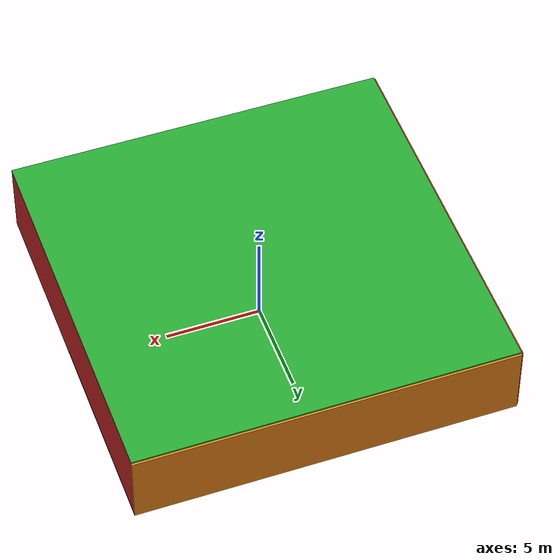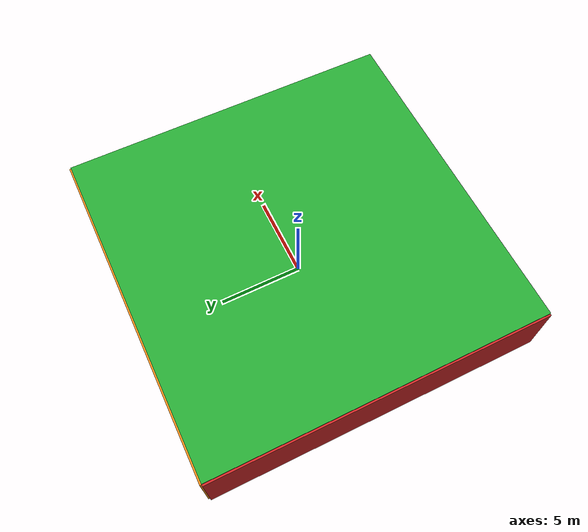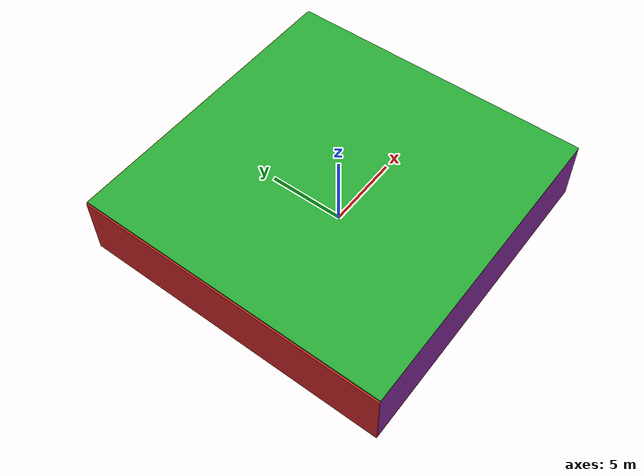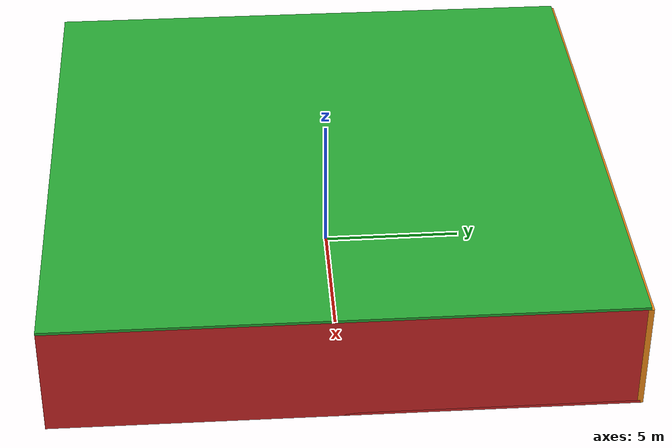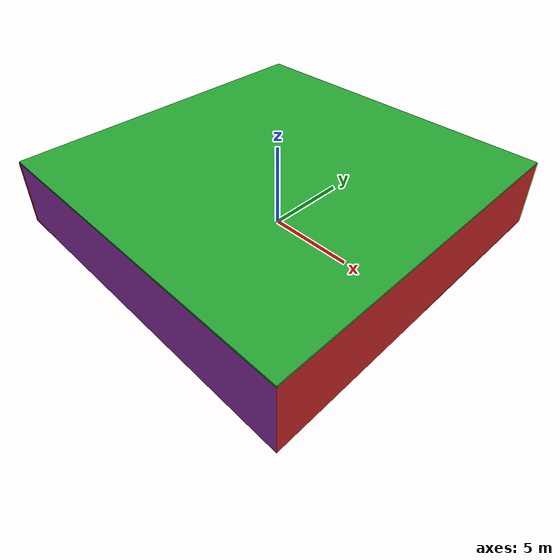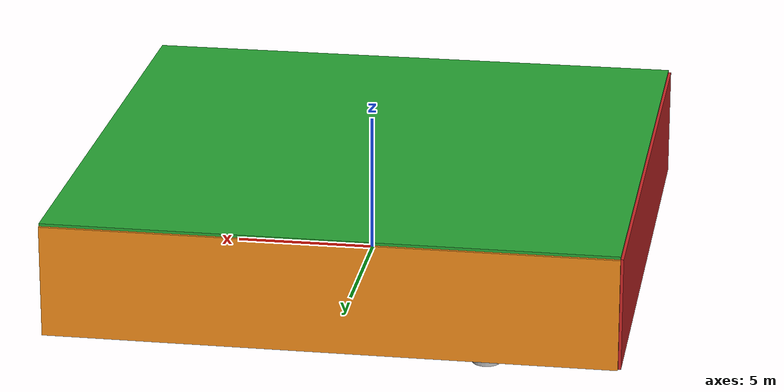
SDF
<sdf version="1.4">
 <world name="default">
  <physics type="ode">
   <max_step_size>0.001</max_step_size>
   <real_time_factor>1</real_time_factor>
   <real_time_update_rate>1000</real_time_update_rate>
   <gravity>0 0 -9.8</gravity>
  </physics>
  <scene><ambient>0.4 0.4 0.4 1</ambient><background>0.7 0.7 0.7 1</background><shadows>1</shadows></scene>
  <model name="Surrounding">
   <static>1</static>
   <link name="Ceiling">
    <collision name="Ceiling_Collision"><geometry><box><size>20 20 0.1</size></box></geometry></collision>
    <visual name="Ceiling_Visual">
     <geometry><box><size>20 20 0.1</size></box></geometry>
     <material>
      <script><uri>file://media/materials/scripts/gazebo.material</uri><name>Gazebo/Green</name></script>
     </material>
    </visual>
    <pose>0 0 4.05 0 0 0</pose>
   </link>
   <link name="Wall_South">
    <collision name="Wall_South_Collision">
     <geometry><box><size>20 0 4</size></box></geometry>
     <pose>0 0 2 0 -0 0</pose>
    </collision>
    <visual name="Wall_South_Visual">
     <pose>0 0 2 0 -0 0</pose>
     <geometry><box><size>20 0 4</size></box></geometry>
     <material>
      <script><uri>file://media/materials/scripts/gazebo.material</uri><name>Gazebo/Purple</name></script>
     </material>
    </visual>
    <velocity_decay><linear>0</linear><angular>0</angular></velocity_decay>
    <pose>0 -10 0 0 -0 0</pose>
   </link>
   <link name="Wall_East">
    <collision name="Wall_21_Collision">
     <geometry><box><size>20 0 4</size></box></geometry>
     <pose>0 0 2 0 -0 0</pose>
    </collision>
    <visual name="Wall_21_Visual">
     <pose>0 0 2 0 -0 0</pose>
     <geometry><box><size>20 0 4</size></box></geometry>
     <material>
      <script><uri>file://media/materials/scripts/gazebo.material</uri><name>Gazebo/RedGlow</name></script>
     </material>
    </visual>
    <velocity_decay><linear>0</linear><angular>0</angular></velocity_decay>
    <pose>10 0 0 0 -0 1.5708</pose>
   </link>
   <link name="Wall_North">
    <collision name="Wall_22_Collision">
     <geometry><box><size>20 0.2 4</size></box></geometry>
     <pose>0 0 2 0 -0 0</pose>
    </collision>
    <visual name="Wall_22_Visual">
     <pose>0 0 2 0 -0 0</pose>
     <geometry><box><size>20 0.2 4</size></box></geometry>
     <material>
      <script><uri>file://media/materials/scripts/gazebo.material</uri><name>Gazebo/Orange</name></script>
     </material>
    </visual>
    <velocity_decay><linear>0</linear><angular>0</angular></velocity_decay>
    <pose>0 10 0 0 -0 0</pose>
   </link>
   <link name="Wall_West">
    <collision name="Wall_23_Collision">
     <geometry><box><size>20 0.2 4</size></box></geometry>
     <pose>0 0 2 0 -0 0</pose>
    </collision>
    <visual name="Wall_23_Visual">
     <pose>0 0 2 0 -0 0</pose>
     <geometry><box><size>20 0.2 4</size></box></geometry>
     <material>
      <script><uri>file://media/materials/scripts/gazebo.material</uri><name>Gazebo/Red</name></script>
     </material>
    </visual>
    <velocity_decay><linear>0</linear><angular>0</angular></velocity_decay>
    <pose>-10 0 0 0 0 -1.5708</pose>
   </link>
   <link name="Ground_link">
    <collision name="collision">
     <pose>0 0 .05 0 -0 0</pose>
     <geometry><box><size>20 20 0.1</size></box></geometry>
    </collision>
    <visual name="visual">
     <pose>0 0 .05 0 -0 0</pose>
     <geometry><box><size>20 20 0.1</size></box></geometry>
     <material>
      <script><uri>file://media/materials/scripts/gazebo.material</uri><name>Gazebo/Red</name></script>
     </material>
    </visual>
   </link>
   <static>1</static>
  </model>
  <spherical_coordinates>
   <surface_model>EARTH_WGS84</surface_model>
   <latitude_deg>0</latitude_deg>
   <longitude_deg>0</longitude_deg>
   <elevation>0</elevation>
   <heading_deg>0</heading_deg>
  </spherical_coordinates>
  <light name="lightball_0" type="diffuse">
   <diffuse>0.8 0.8 0.8 1</diffuse>
   <specular>0.2 0.2 0.2 1</specular>
   <attenuation>
    <range>100</range>
    <constant>0.7</constant>
    <linear>0.01</linear>
    <quadratic>0.001</quadratic>
   </attenuation>
   <direction>-0.5 0.1 -0.9</direction>
   <pose>0.991246114601 -5.69184282 3.69217467938 0 0 0</pose>
  </light>
  <light name="lightball_1" type="diffuse">
   <diffuse>0.8 0.8 0.8 1</diffuse>
   <specular>0.2 0.2 0.2 1</specular>
   <attenuation>
    <range>100</range>
    <constant>0.7</constant>
    <linear>0.01</linear>
    <quadratic>0.001</quadratic>
   </attenuation>
   <direction>-0.5 0.1 -0.9</direction>
   <pose>4.8696950195 -6.47885284025 3.01170175538 0 0 0</pose>
  </light>
  <light name="lightball_2" type="diffuse">
   <diffuse>0.8 0.8 0.8 1</diffuse>
   <specular>0.2 0.2 0.2 1</specular>
   <attenuation>
    <range>100</range>
    <constant>0.7</constant>
    <linear>0.01</linear>
    <quadratic>0.001</quadratic>
   </attenuation>
   <direction>-0.5 0.1 -0.9</direction>
   <pose>-2.70035170741 8.82289767792 1.97332070563 0 0 0</pose>
  </light>
  <light name="lightball_3" type="diffuse">
   <diffuse>0.8 0.8 0.8 1</diffuse>
   <specular>0.2 0.2 0.2 1</specular>
   <attenuation>
    <range>100</range>
    <constant>0.7</constant>
    <linear>0.01</linear>
    <quadratic>0.001</quadratic>
   </attenuation>
   <direction>-0.5 0.1 -0.9</direction>
   <pose>3.40108885461 2.76924223368 3.04300338273 0 0 0</pose>
  </light>
  <include><uri>model://table</uri><pose>-7.27612280321 -7.17823009201 0 0 0 2.37456740415</pose></include>
  <include><uri>model://table</uri><pose>-4.77021992122 -6.85348536206 0 0 0 1.55011396667</pose></include>
  <include>
   <uri>model://robocup_3Dsim_goal</uri>
   <pose>-4.73034985696 1.39980683647 0 0 0 0.407823444422</pose>
  </include>
  <include>
   <uri>model://textured_shapes</uri>
   <pose>-4.90864358506 7.36008318191 0 0 0 0.312434448306</pose>
  </include>
  <include>
   <uri>model://textured_shapes</uri>
   <pose>-2.05925503754 4.07674473715 0 0 0 1.29591965091</pose>
  </include>
  <include>
   <uri>model://robocup_3Dsim_goal</uri>
   <pose>7.79736201586 4.8709850739 0 0 0 2.20228163813</pose>
  </include>
 </world>
</sdf>

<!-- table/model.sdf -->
<sdf version="1.5">
  <model name="table">
    <static>true</static>
    <link name="link">
      <collision name="surface">
        <pose>0 0 1.0 0 0 0</pose>
        <geometry>
          <box>
            <size>1.5 0.8 0.03</size>
          </box>
        </geometry>
        <surface>
          <friction>
            <ode>
              <mu>0.6</mu>
              <mu2>0.6</mu2>
            </ode>
          </friction>
        </surface>
      </collision>
      <visual name="visual1">
        <pose>0 0 1.0 0 0 0</pose>
        <geometry>
          <box>
            <size>1.5 0.8 0.03</size>
          </box>
        </geometry>
        <material>
          <script>
            <uri>model://media/materials/scripts/gazebo.material</uri>
            <name>Gazebo/Wood</name>
          </script>
        </material>
      </visual>
      <collision name="front_left_leg">
        <pose>0.68 0.38 0.5 0 0 0</pose>
        <geometry>
          <cylinder>
            <radius>0.02</radius>
            <length>1.0</length>
          </cylinder>
        </geometry>
      </collision>
      <visual name="front_left_leg">
        <pose>0.68 0.38 0.5 0 0 0</pose>
        <geometry>
          <cylinder>
            <radius>0.02</radius>
            <length>1.0</length>
          </cylinder>
        </geometry>
        <material>
          <script>
            <uri>model://media/materials/scripts/gazebo.material</uri>
            <name>Gazebo/Grey</name>
          </script>
        </material>
      </visual>
      <collision name="front_right_leg">
        <pose>0.68 -0.38 0.5 0 0 0</pose>
        <geometry>
          <cylinder>
            <radius>0.02</radius>
            <length>1.0</length>
          </cylinder>
        </geometry>
      </collision>
      <visual name="front_right_leg">
        <pose>0.68 -0.38 0.5 0 0 0</pose>
        <geometry>
          <cylinder>
            <radius>0.02</radius>
            <length>1.0</length>
          </cylinder>
        </geometry>
        <material>
          <script>
            <uri>model://media/materials/scripts/gazebo.material</uri>
            <name>Gazebo/Grey</name>
          </script>
        </material>
      </visual>
      <collision name="back_right_leg">
        <pose>-0.68 -0.38 0.5 0 0 0</pose>
        <geometry>
          <cylinder>
            <radius>0.02</radius>
            <length>1.0</length>
          </cylinder>
        </geometry>
      </collision>
      <visual name="back_right_leg">
        <pose>-0.68 -0.38 0.5 0 0 0</pose>
        <geometry>
          <cylinder>
            <radius>0.02</radius>
            <length>1.0</length>
          </cylinder>
        </geometry>
        <material>
          <script>
            <uri>model://media/materials/scripts/gazebo.material</uri>
            <name>Gazebo/Grey</name>
          </script>
        </material>
      </visual>
      <collision name="back_left_leg">
        <pose>-0.68 0.38 0.5 0 0 0</pose>
        <geometry>
          <cylinder>
            <radius>0.02</radius>
            <length>1.0</length>
          </cylinder>
        </geometry>
      </collision>
      <visual name="back_left_leg">
        <pose>-0.68 0.38 0.5 0 0 0</pose>
        <geometry>
          <cylinder>
            <radius>0.02</radius>
            <length>1.0</length>
          </cylinder>
        </geometry>
        <material>
          <script>
            <uri>model://media/materials/scripts/gazebo.material</uri>
            <name>Gazebo/Grey</name>
          </script>
        </material>
      </visual>
    </link>
  </model>
</sdf>

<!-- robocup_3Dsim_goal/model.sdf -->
<sdf version="1.5">
  <model name="robocup_3d_goal">
    <static>true</static>
    <link name="left_post">
      <pose>0 1.05 0.45 0 0 0</pose>
      <collision name="collision">
        <geometry>
          <cylinder>
            <radius>0.05</radius>
            <length>0.9</length>
          </cylinder>
        </geometry>
      </collision>
      <visual name="visual">
        <geometry>
          <cylinder>
            <radius>0.05</radius>
            <length>0.9</length>
          </cylinder>
        </geometry>
        <material>
          <script>
            <uri>file://media/materials/scripts/gazebo.material</uri>
            <name>Gazebo/ZincYellow</name>
          </script>
        </material>
      </visual>
    </link>
    <link name="left_support_horiz_lower">
      <pose>0.30 1.05 0.01 0 0 0</pose>
      <collision name="collision">
        <geometry>
          <box>
            <size>0.50 0.02 0.02</size>
          </box>
        </geometry>
      </collision>
      <visual name="visual">
        <geometry>
          <box>
            <size>0.50 0.02 0.02</size>
          </box>
        </geometry>
        <material>
          <script>
            <uri>file://media/materials/scripts/gazebo.material</uri>
            <name>Gazebo/White</name>
          </script>
        </material>
      </visual>
    </link>
    <link name="left_support_horiz_upper">
      <pose>0.30 1.05 0.79 0 0 0</pose>
      <collision name="collision">
        <geometry>
          <box>
            <size>0.50 0.02 0.02</size>
          </box>
        </geometry>
      </collision>
      <visual name="visual">
        <geometry>
          <box>
            <size>0.50 0.02 0.02</size>
          </box>
        </geometry>
        <material>
          <script>
            <uri>file://media/materials/scripts/gazebo.material</uri>
            <name>Gazebo/White</name>
          </script>
        </material>
      </visual>
    </link>
    <link name="left_support_vertical">
      <pose>0.56 1.05 0.4 0 1.5708 0</pose>
      <collision name="collision">
        <geometry>
          <box>
            <size>0.80 0.02 0.02</size>
          </box>
        </geometry>
      </collision>
      <visual name="visual">
        <geometry>
          <box>
            <size>0.80 0.02 0.02</size>
          </box>
        </geometry>
        <material>
          <script>
            <uri>file://media/materials/scripts/gazebo.material</uri>
            <name>Gazebo/White</name>
          </script>
        </material>
      </visual>
    </link>
    <link name="right_support_horiz_lower">
      <pose>0.30 -1.05 0.01 0 0 0</pose>
      <collision name="collision">
        <geometry>
          <box>
            <size>0.50 0.02 0.02</size>
          </box>
        </geometry>
      </collision>
      <visual name="visual">
        <geometry>
          <box>
            <size>0.50 0.02 0.02</size>
          </box>
        </geometry>
        <material>
          <script>
            <uri>file://media/materials/scripts/gazebo.material</uri>
            <name>Gazebo/White</name>
          </script>
        </material>
      </visual>
    </link>
    <link name="right_support_horiz_upper">
      <pose>0.30 -1.05 0.79 0 0 0</pose>
      <collision name="collision">
        <geometry>
          <box>
            <size>0.50 0.02 0.02</size>
          </box>
        </geometry>
      </collision>
      <visual name="visual">
        <geometry>
          <box>
            <size>0.50 0.02 0.02</size>
          </box>
        </geometry>
        <material>
          <script>
            <uri>file://media/materials/scripts/gazebo.material</uri>
            <name>Gazebo/White</name>
          </script>
        </material>
      </visual>
    </link>
    <link name="right_support_vertical">
      <pose>0.56 -1.05 0.4 0 1.5708 0</pose>
      <collision name="collision">
        <geometry>
          <box>
            <size>0.80 0.02 0.02</size>
          </box>
        </geometry>
      </collision>
      <visual name="visual">
        <geometry>
          <box>
            <size>0.80 0.02 0.02</size>
          </box>
        </geometry>
        <material>
          <script>
            <uri>file://media/materials/scripts/gazebo.material</uri>
            <name>Gazebo/White</name>
          </script>
        </material>
      </visual>
    </link>
    <link name="center_support_horiz_lower">
      <pose>0.56 0 0.01 0 1.5708 0</pose>
      <collision name="collision">
        <geometry>
          <box>
            <size>0.02 2.08 0.02</size>
          </box>
        </geometry>
      </collision>
      <visual name="visual">
        <geometry>
          <box>
            <size>0.02 2.08 0.02</size>
          </box>
        </geometry>
        <material>
          <script>
            <uri>file://media/materials/scripts/gazebo.material</uri>
            <name>Gazebo/White</name>
          </script>
        </material>
      </visual>
    </link>
    <link name="center_support_horiz_upper">
      <pose>0.56 0 0.79 0 1.5708 0</pose>
      <collision name="collision">
        <geometry>
          <box>
            <size>0.02 2.08 0.02</size>
          </box>
        </geometry>
      </collision>
      <visual name="visual">
        <geometry>
          <box>
            <size>0.02 2.08 0.02</size>
          </box>
        </geometry>
        <material>
          <script>
            <uri>file://media/materials/scripts/gazebo.material</uri>
            <name>Gazebo/White</name>
          </script>
        </material>
      </visual>
    </link>
    <link name="right_post">
      <pose>0 -1.05 0.45 0 0 0</pose>
      <collision name="collision">
        <geometry>
          <cylinder>
            <radius>0.05</radius>
            <length>0.9</length>
          </cylinder>
        </geometry>
      </collision>
      <visual name="visual">
        <geometry>
          <cylinder>
            <radius>0.05</radius>
            <length>0.9</length>
          </cylinder>
        </geometry>
        <material>
          <script>
            <uri>file://media/materials/scripts/gazebo.material</uri>
            <name>Gazebo/ZincYellow</name>
          </script>
        </material>
      </visual>
    </link>
    <link name="crossbar">
      <pose>0 0 0.85 1.57 1.57 0</pose>
      <collision name="collision">
        <geometry>
          <cylinder>
            <radius>0.05</radius>
            <length>2.0</length>
          </cylinder>
        </geometry>
      </collision>
      <visual name="visual">
        <geometry>
          <cylinder>
            <radius>0.05</radius>
            <length>2.0</length>
          </cylinder>
        </geometry>
        <material>
          <script>
            <uri>file://media/materials/scripts/gazebo.material</uri>
            <name>Gazebo/ZincYellow</name>
          </script>
        </material>
      </visual>
    </link>
    <link name="center_net">
      <pose>0.56 0 0.40 0 0 0</pose>
      <collision name="collision">
        <geometry>
          <box>
            <size>0.01 2.1 0.80</size>
          </box>
        </geometry>
      </collision>
      <visual name="visual">
        <geometry>
          <box>
            <size>0.01 2.1 0.80</size>
          </box>
        </geometry>
        <material>
          <script>
            <uri>model://../model_source/models/robocup09_spl_field/materials/scripts/</uri>
            <uri>model://../model_source/models/robocup09_spl_field/materials/textures/</uri>
            <name>RoboCup/Net</name>
          </script>
        </material>
      </visual>
    </link>
    <link name="left_net">
      <pose>0.30 1.05 0.40 0 0 0</pose>
      <collision name="collision">
        <geometry>
          <box>
            <size>0.50 0.01 0.76</size>
          </box>
        </geometry>
      </collision>
      <visual name="visual">
        <geometry>
          <box>
            <size>0.50 0.01 0.76</size>
          </box>
        </geometry>
        <material>
          <script>
            <uri>model://../model_source/models/robocup09_spl_field/materials/scripts/</uri>
            <uri>model://../model_source/models/robocup09_spl_field/materials/textures/</uri>
            <name>RoboCup/Net</name>
          </script>
        </material>
      </visual>
    </link>
    <link name="right_net">
      <pose>0.30 -1.05 0.40 0 0 0</pose>
      <collision name="collision">
        <geometry>
          <box>
            <size>0.50 0.01 0.76</size>
          </box>
        </geometry>
      </collision>
      <visual name="visual">
        <geometry>
          <box>
            <size>0.50 0.01 0.76</size>
          </box>
        </geometry>
        <material>
          <script>
            <uri>model://../model_source/models/robocup09_spl_field/materials/scripts/</uri>
            <uri>model://../model_source/models/robocup09_spl_field/materials/textures/</uri>
            <name>RoboCup/Net</name>
          </script>
        </material>
      </visual>
    </link>
  </model>
</sdf>

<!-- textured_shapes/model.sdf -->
<sdf version="1.6">
  <model name="textured_shapes">
    <pose>0 0 0.5 0 0 0</pose>
    <link name="box">
      <pose>0 -1.5 0 0 0 0</pose>
      <collision name="collision">
        <geometry>
          <box>
            <size>1 1 1</size>
          </box>
        </geometry>
      </collision>
      <visual name="visual">
        <geometry>
          <box>
            <size>1 1 1</size>
          </box>
        </geometry>
        <material>
          <script>
            <uri>model://../model_source/models/textured_shapes/materials/scripts</uri>
            <uri>model://../model_source/models/textured_shapes/materials/textures</uri>
            <name>TexturedShape/Squares</name>
          </script>
        </material>
      </visual>
    </link>
    <link name="sphere">
      <collision name="collision">
        <geometry>
          <sphere>
            <radius>0.5</radius>
          </sphere>
        </geometry>
      </collision>
      <visual name="visual">
        <geometry>
          <sphere>
            <radius>0.5</radius>
          </sphere>
        </geometry>
        <material>
          <script>
            <uri>model://../model_source/models/textured_shapes/materials/scripts</uri>
            <uri>model://../model_source/models/textured_shapes/materials/textures</uri>
            <name>TexturedShape/Squares</name>
          </script>
        </material>
      </visual>
    </link>
    <link name="cylinder">
      <pose>0 1.5 0 0 0 0</pose>
      <collision name="collision">
        <geometry>
          <cylinder>
            <radius>0.5</radius>
            <length>1</length>
          </cylinder>
        </geometry>
      </collision>
      <visual name="visual">
        <geometry>
          <cylinder>
            <radius>0.5</radius>
            <length>1</length>
          </cylinder>
        </geometry>
        <material>
          <script>
            <uri>model://../model_source/models/textured_shapes/materials/scripts</uri>
            <uri>model://../model_source/models/textured_shapes/materials/textures</uri>
            <name>TexturedShape/Squares</name>
          </script>
        </material>
      </visual>
    </link>
  </model>
</sdf>
